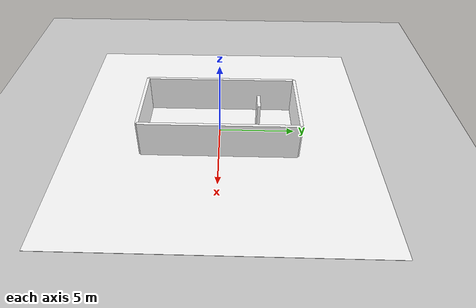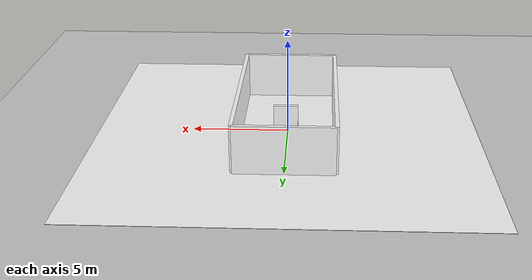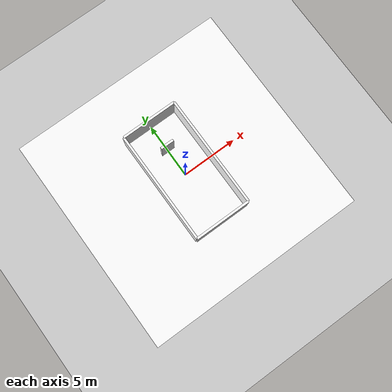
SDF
<?xml version="1.0"?>
<sdf version="1.10">
    <world name="hospital_world">
        <physics name="1ms" type="ignored">
            <max_step_size>0.001</max_step_size>
            <real_time_factor>1.0</real_time_factor>
        </physics>
        <plugin
            filename="gz-sim-physics-system"
            name="gz::sim::systems::Physics">
        </plugin>
        <plugin
            filename="gz-sim-user-commands-system"
            name="gz::sim::systems::UserCommands">
        </plugin>
        <plugin
            filename="gz-sim-scene-broadcaster-system"
            name="gz::sim::systems::SceneBroadcaster">
        </plugin>

        <light type="directional" name="sun">
            <cast_shadows>true</cast_shadows>
            <pose>0 0 10 0 0 0</pose>
            <diffuse>0.9 0.9 0.9 1</diffuse>
            <specular>0 0 0 1</specular>
            <attenuation>
                <range>1000</range>
                <constant>0.9</constant>
                <linear>0.01</linear>
                <quadratic>0.001</quadratic>
            </attenuation>
            <direction>-0.5 0.1 -0.9</direction>
        </light>
        <plugin filename="gz-sim-imu-system"
            name="gz::sim::systems::Imu">
        </plugin>
        <plugin
            filename="gz-sim-sensors-system"
            name="gz::sim::systems::Sensors">
            <render_engine>ogre2</render_engine>
        </plugin>
        <model name="ground_plane">
            <static>true</static>
            <link name="link">
                <collision name="collision">
                    <geometry>
                        <plane>
                            <normal>0 0 1</normal>
                        </plane>
                    </geometry>
                </collision>
                <visual name="visual">
                    <geometry>
                        <plane>
                            <normal>0 0 1</normal>
                            <size>100 100</size>
                        </plane>
                    </geometry>
                    <material>
                        <ambient>0.8 0.8 0.8 1</ambient>
                        <diffuse>0.8 0.8 0.8 1</diffuse>
                        <specular>0.8 0.8 0.8 1</specular>
                    </material>
                </visual>
            </link>
        </model>
        <!-- 바닥 -->
        <model name="floor">
            <static>true</static>
            <link name="floor_link">
                <collision name="collision">
                    <geometry>
                        <plane>
                            <normal>0 0 1</normal>
                            <size>20 20</size>
                        </plane>
                    </geometry>
                    <surface>
                        <contact />
                        <bounce />
                        <friction />
                    </surface>
                </collision>
                <visual name="visual">
                    <geometry>
                        <plane>
                            <normal>0 0 1</normal>
                            <size>20 20</size>
                        </plane>
                    </geometry>
                    <material>
                        <ambient>1.0 1.0 1.0 1</ambient>
                        <diffuse>1.0 1.0 1.0 1</diffuse>
                        <specular>1.0 1.0 1.0 1</specular>
                    </material>
                </visual>
            </link>
        </model>

        <!-- 복도 벽 (긴 직사각형) -->
        <model name="hall_wall_left">
            <static>true</static>
            <link name="link">
                <collision name="collision">
                    <geometry>
                        <box>
                            <size>0.2 10 2.5</size>
                        </box>
                    </geometry>
                </collision>
                <visual name="visual">
                    <geometry>
                        <box>
                            <size>0.2 10 2.5</size>
                        </box>
                    </geometry>
                    <material>
                        <ambient>1.0 1.0 1.0 1</ambient>
                        <diffuse>1.0 1.0 1.0 1</diffuse>
                        <specular>1.0 1.0 1.0 1</specular>
                    </material>
                </visual>
                <pose>-2.5 0 1.25 0 0 0</pose>
            </link>
        </model>

        <model name="hall_wall_right">
            <static>true</static>
            <link name="link">
                <collision name="collision">
                    <geometry>
                        <box>
                            <size>0.2 10 2.5</size>
                        </box>
                    </geometry>
                </collision>
                <visual name="visual">
                    <geometry>
                        <box>
                            <size>0.2 10 2.5</size>
                        </box>
                    </geometry>
                    <material>
                        <ambient>1.0 1.0 1.0 1</ambient>
                        <diffuse>1.0 1.0 1.0 1</diffuse>
                        <specular>1.0 1.0 1.0 1</specular>
                    </material>
                </visual>
                <pose>2.5 0 1.25 0 0 0</pose>
            </link>
        </model>

        <!-- 병실 문 (중간에 구멍 느낌) -->
        <model name="room_wall1">
            <static>true</static>
            <link name="link">
                <collision name="collision">
                    <geometry>
                        <box>
                            <size>5 0.2 2.5</size>
                        </box>
                    </geometry>
                </collision>
                <visual name="visual">
                    <geometry>
                        <box>
                            <size>5 0.2 2.5</size>
                        </box>
                    </geometry>
                    <material>
                        <ambient>1.0 1.0 1.0 1</ambient>
                        <diffuse>1.0 1.0 1.0 1</diffuse>
                        <specular>1.0 1.0 1.0 1</specular>
                    </material>
                </visual>
                <pose>0 5 1.25 0 0 0</pose>
            </link>
        </model>
        <model name="room_wall2">
            <static>true</static>
            <link name="link">
                <collision name="collision">
                    <geometry>
                        <box>
                            <size>5 0.2 2.5</size>
                        </box>
                    </geometry>
                </collision>
                <visual name="visual">
                    <geometry>
                        <box>
                            <size>5 0.2 2.5</size>
                        </box>
                    </geometry>
                    <material>
                        <ambient>1.0 1.0 1.0 1</ambient>
                        <diffuse>1.0 1.0 1.0 1</diffuse>
                        <specular>1.0 1.0 1.0 1</specular>
                    </material>
                </visual>
                <pose>0 -5 1.25 0 0 0</pose>
            </link>
        </model>
        <model name="waiting_area_wall">
            <static>true</static>
            <link name="link">
                <collision name="collision">
                    <geometry>
                        <box>
                            <size>1.2 0.2 2.5</size>
                        </box>
                    </geometry>
                </collision>
                <visual name="visual">
                    <geometry>
                        <box>
                            <size>1.2 0.2 2.5</size>
                        </box>
                    </geometry>
                    <material>
                        <ambient>1 1 1 1</ambient>
                        <diffuse>1 1 1 1</diffuse>
                    </material>
                </visual>
                <pose>0 2.5 1.25 0 0 0</pose>
            </link>
        </model>
    </world>

</sdf>
